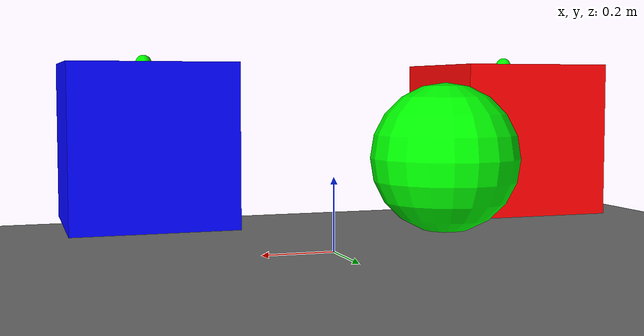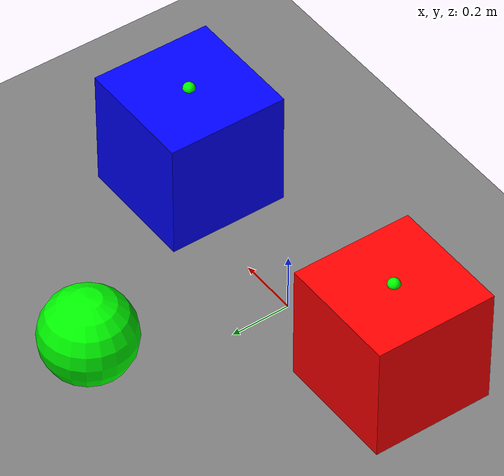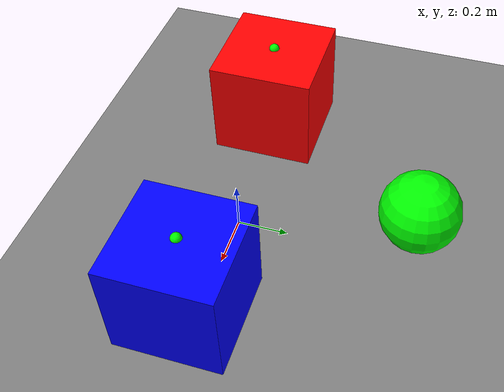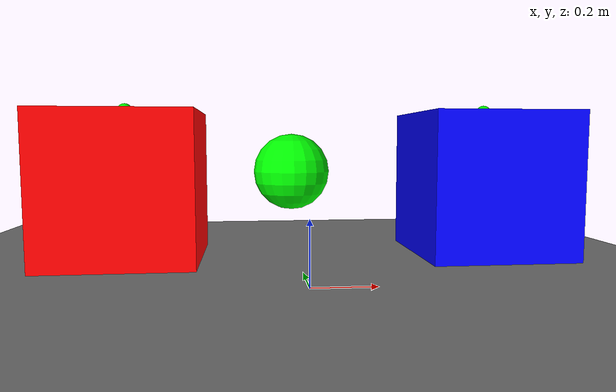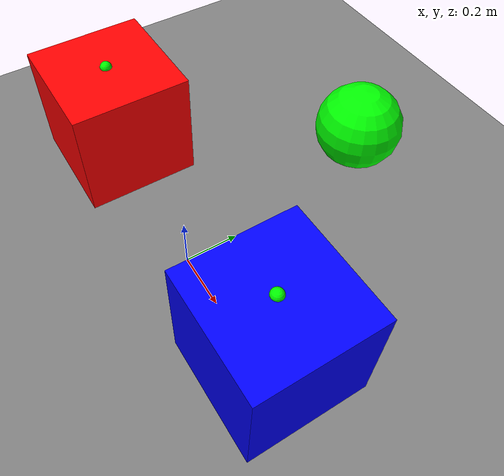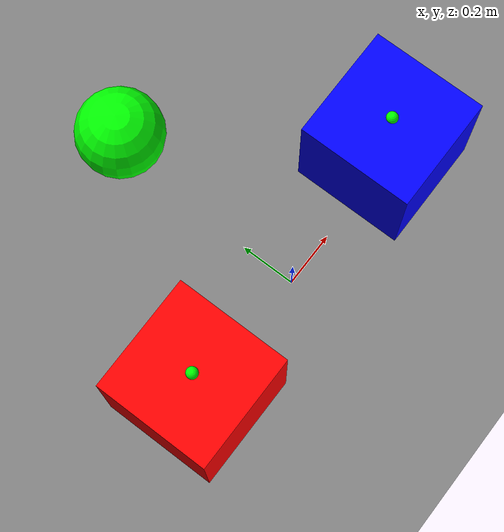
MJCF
<?xml version="1.0" ?>
<mujoco>
  <worldbody>
    <light pos="0 0 3"/>
    <geom name="floor" type="plane" size="5 5 0.1"/>
    <body name="red_box" pos="-0.5 0 0.3">
      <freejoint/>
      <geom name="red_box_geom" type="box" size="0.2 0.2 0.2" rgba="1 0 0 1" friction="0.9 0.05 0.01"/>
      <site name="red_box_top" pos="0 0 0.2" size="0.02" rgba="0 1 0 1"/>
      <site name="red_box_bottom" pos="0 0 -0.2" size="0.02" rgba="1 1 0 1"/>
    </body>
    <body name="blue_box" pos="0.5 0 0.3">
      <freejoint/>
      <geom name="blue_box_geom" type="box" size="0.2 0.2 0.2" rgba="0 0 1 1" friction="0.8 0.04 0.02"/>
      <site name="blue_box_top" pos="0 0 0.2" size="0.02" rgba="0 1 0 1"/>
      <site name="blue_box_bottom" pos="0 0 -0.2" size="0.02" rgba="1 1 0 1"/>
    </body>
    <body name="green_sphere" pos="0 0.7 0.3">
      <freejoint/>
      <geom name="green_sphere_sphere" type="sphere" size="0.15" rgba="0 1 0 1"/>
      <site name="green_sphere_center" pos="0 0 0" size="0.01"/>
    </body>
  </worldbody>
  <option gravity="0 0 -9.81"/>
</mujoco>
